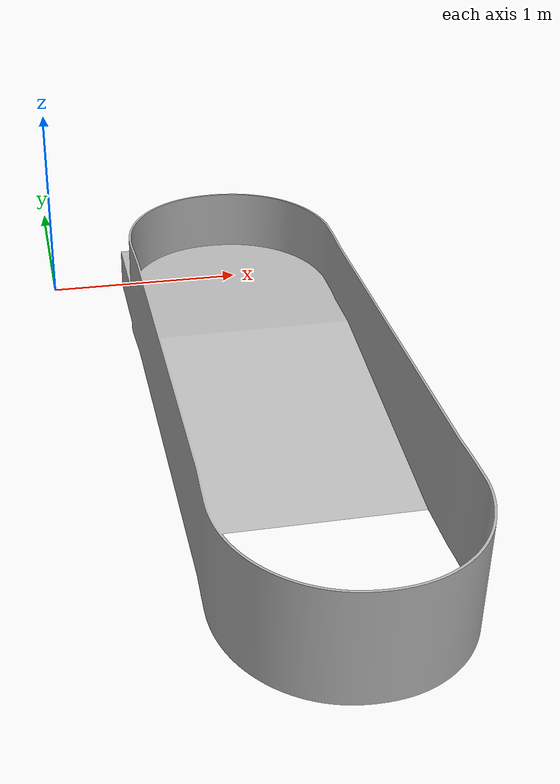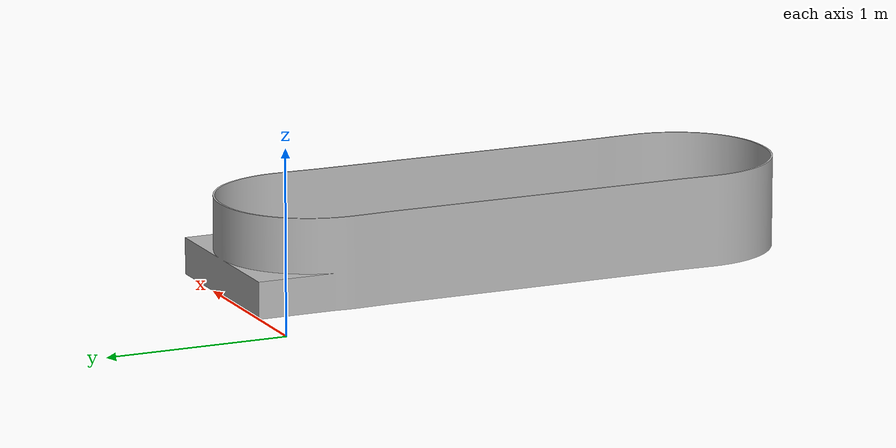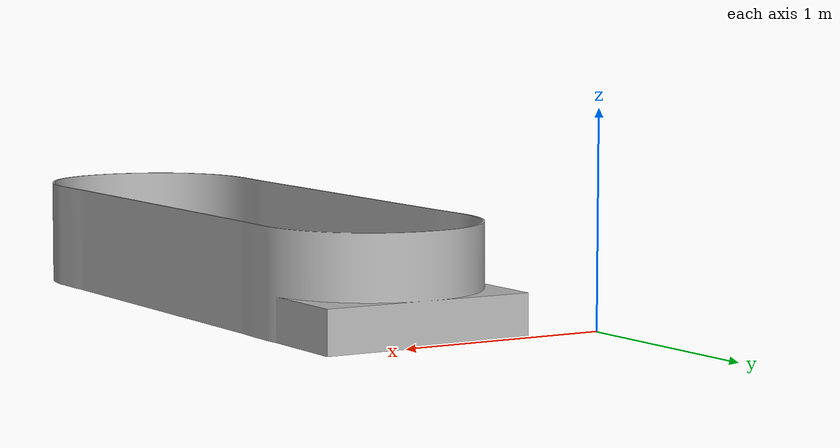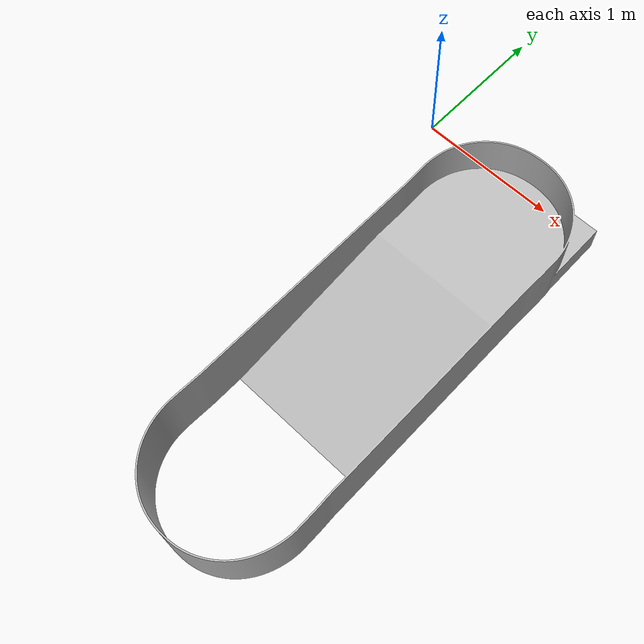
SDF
<?xml version="1.0" ?>

<sdf version="1.9">
  <!-- Model of the ramp circuit -->
  <model name="simplified_circuit">
    <static>true</static>
    <link name="simplified_circuit_link">
      <collision name="simplified_circuit_collision">
        <pose degrees="true">0 0 0 90 0 0</pose>
        <geometry>
          <mesh>
            <uri>meshes/Pista_simplificada.STL</uri>
          </mesh>
        </geometry>
      </collision>

      <visual name="simplified_circuit_visual">
        <pose degrees="true">0 0 0 90 0 0</pose>
        <geometry>
          <mesh>
            <uri>meshes/Pista_simplificada.STL</uri>
          </mesh>
        </geometry>
      </visual>
    </link>
  </model>
</sdf>
